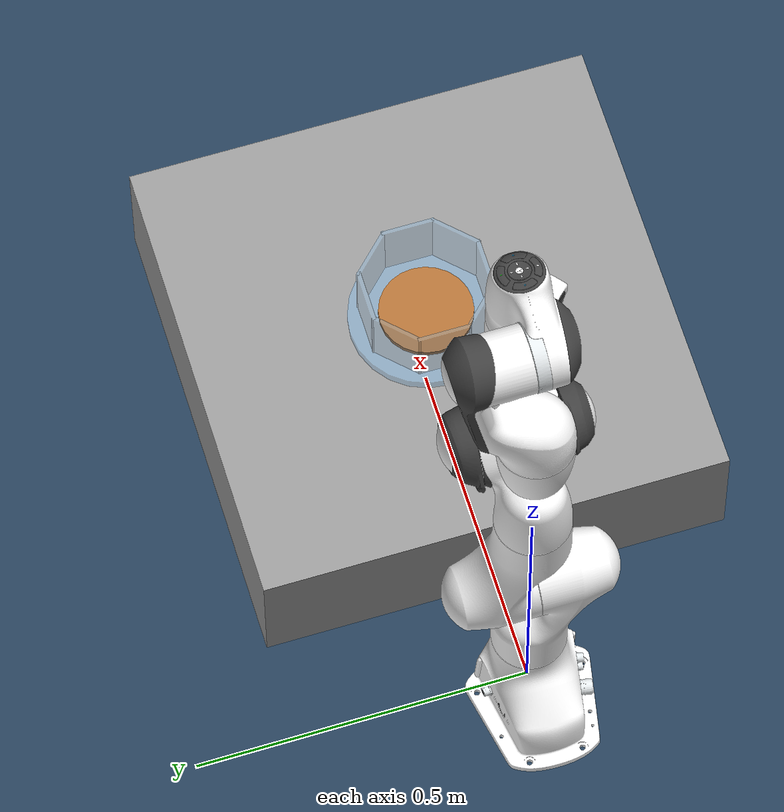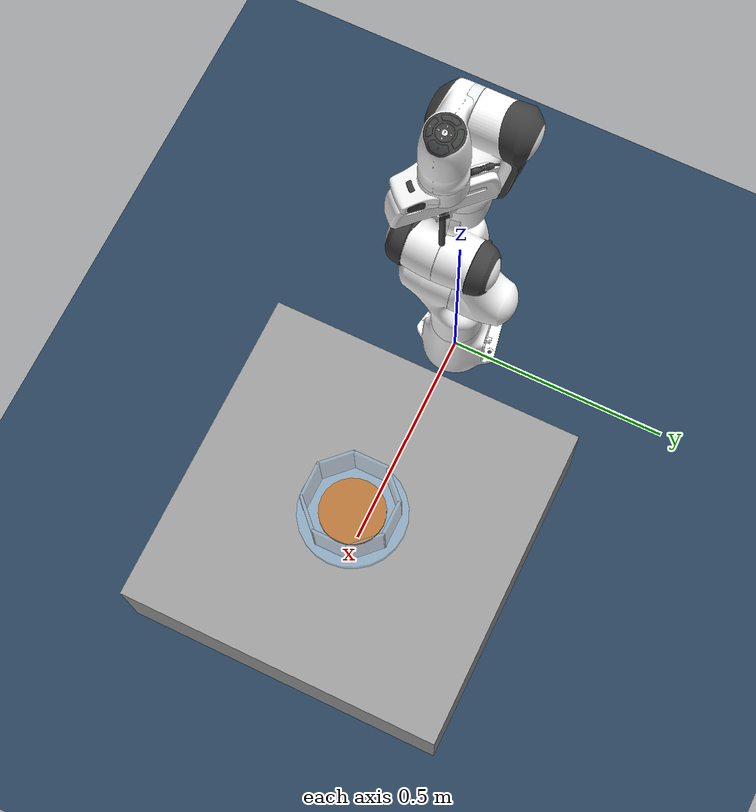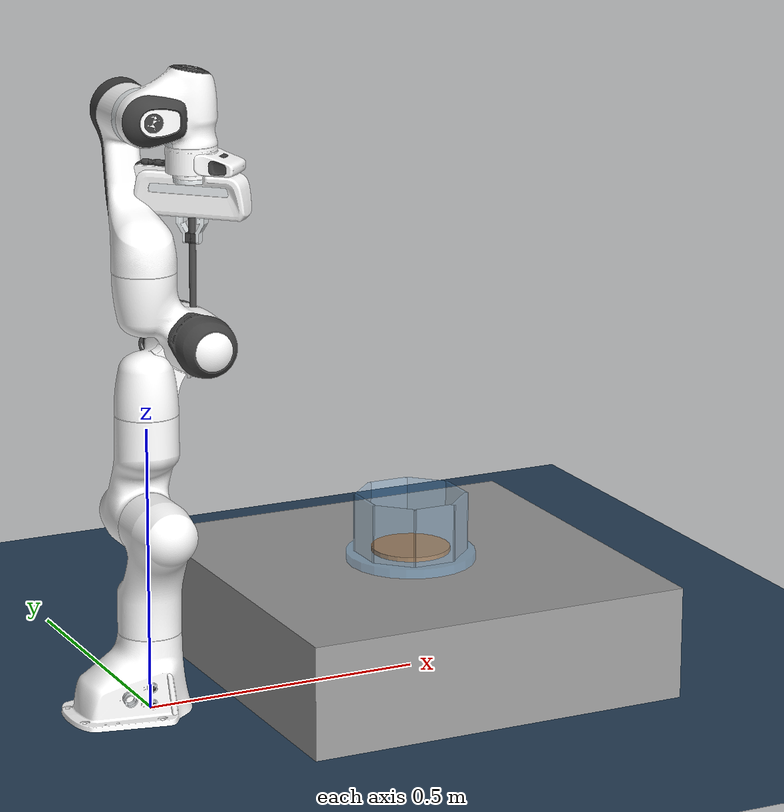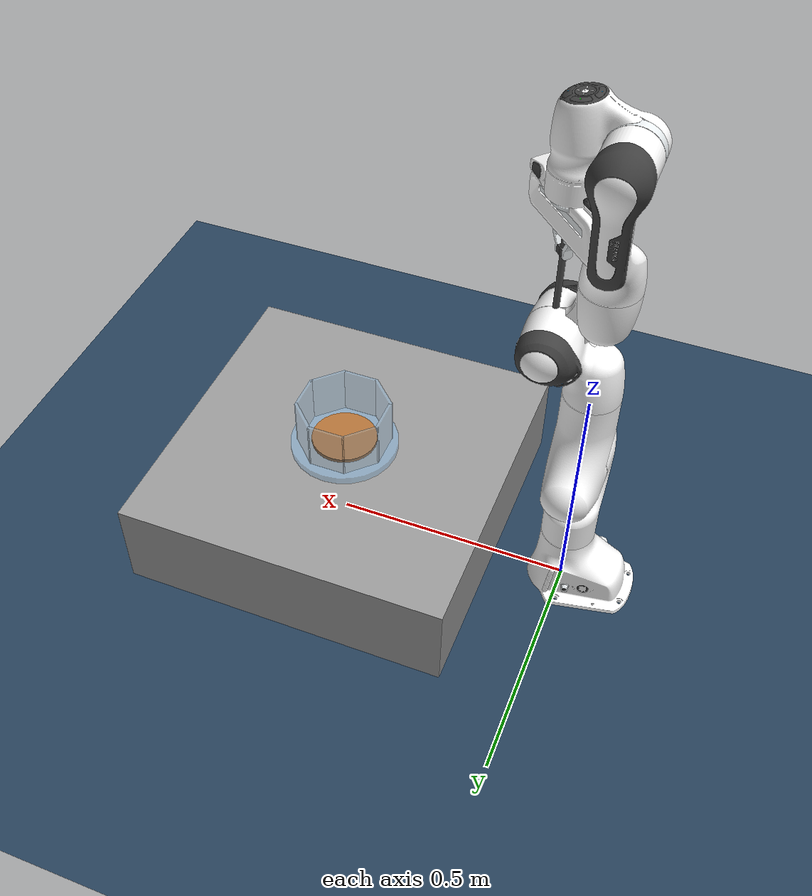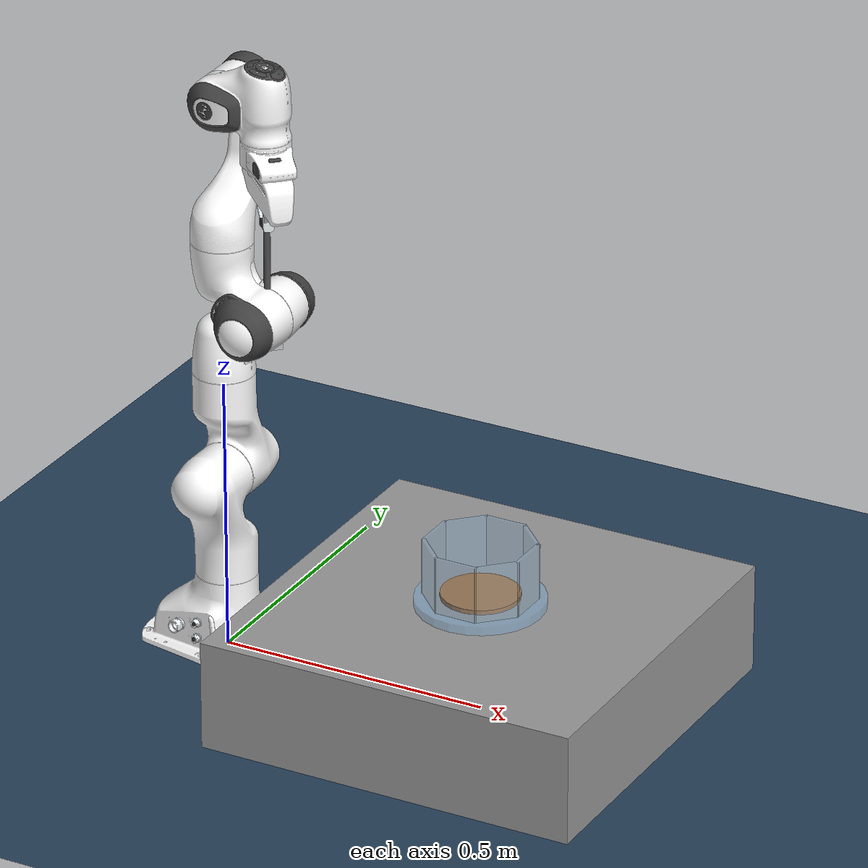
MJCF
<mujoco model="panda scene">
  <include file="panda.xml"/>
  <option gravity="0 0 0"/>

  <statistic center="0.3 0 0.4" extent="1"/>

  <visual>
    <headlight diffuse="0.6 0.6 0.6" ambient="0.3 0.3 0.3" specular="0 0 0"/>
    <rgba haze="0.15 0.25 0.35 1"/>
    <global azimuth="120" elevation="-20"/>
  </visual>

  <asset>
    <texture type="skybox" builtin="gradient" rgb1="0.3 0.5 0.7" rgb2="0 0 0" width="512" height="3072"/>
    <texture type="2d" name="groundplane" builtin="checker" mark="edge" rgb1="0.2 0.3 0.4" rgb2="0.1 0.2 0.3"
      markrgb="0.8 0.8 0.8" width="300" height="300"/>
    <material name="groundplane" texture="groundplane" texuniform="true" texrepeat="5 5" reflectance="0.2"/>
  </asset>

  <worldbody>
    <light pos="0 0 1.5" dir="0 0 -1" directional="true"/>
    <geom name="floor" size="0 0 0.05" type="plane" material="groundplane"/>
    <geom
      name="table"
      type="box"
      pos="0.5 0 0.1"
      size="0.35 0.35 0.1"
      rgba="0.6 0.6 0.6 1"/>

    <!-- Small beaker approximation.
         MuJoCo geoms are solid, so the beaker wall is built from
         several thin boxes instead of one hollow cylinder. -->
    <body name="beaker" pos="0.5 0 0.2">
      <!-- Wider bottom to reduce accidental penetration near the base. -->
      <geom
        name="beaker_base"
        type="cylinder"
        pos="0 0 0.008"
        size="0.115 0.008"
        rgba="0.45 0.75 1.0 0.35"/>

      <geom
        name="beaker_wall_0"
        type="box"
        pos="0.090 0 0.065"
        size="0.003 0.040 0.055"
        rgba="0.45 0.75 1.0 0.25"/>
      <geom
        name="beaker_wall_1"
        type="box"
        pos="0.0636 0.0636 0.065"
        quat="0.9238795 0 0 0.3826834"
        size="0.003 0.040 0.055"
        rgba="0.45 0.75 1.0 0.25"/>
      <geom
        name="beaker_wall_2"
        type="box"
        pos="0 0.090 0.065"
        quat="0.7071068 0 0 0.7071068"
        size="0.003 0.040 0.055"
        rgba="0.45 0.75 1.0 0.25"/>
      <geom
        name="beaker_wall_3"
        type="box"
        pos="-0.0636 0.0636 0.065"
        quat="0.3826834 0 0 0.9238795"
        size="0.003 0.040 0.055"
        rgba="0.45 0.75 1.0 0.25"/>
      <geom
        name="beaker_wall_4"
        type="box"
        pos="-0.090 0 0.065"
        size="0.003 0.040 0.055"
        rgba="0.45 0.75 1.0 0.25"/>
      <geom
        name="beaker_wall_5"
        type="box"
        pos="-0.0636 -0.0636 0.065"
        quat="0.9238795 0 0 0.3826834"
        size="0.003 0.040 0.055"
        rgba="0.45 0.75 1.0 0.25"/>
      <geom
        name="beaker_wall_6"
        type="box"
        pos="0 -0.090 0.065"
        quat="0.7071068 0 0 0.7071068"
        size="0.003 0.040 0.055"
        rgba="0.45 0.75 1.0 0.25"/>
      <geom
        name="beaker_wall_7"
        type="box"
        pos="0.0636 -0.0636 0.065"
        quat="0.3826834 0 0 0.9238795"
        size="0.003 0.040 0.055"
        rgba="0.45 0.75 1.0 0.25"/>
    </body>

    <!-- Tested material inside the beaker. Keep the name sample_geom:
         Python code uses it to compute the material surface height. -->
    <body name="sample" pos="0.5 0 0.220">
      <geom
        name="sample_geom"
        type="cylinder"
        size="0.070 0.004"
        solref="0.02 1"
        solimp="0.8 0.95 0.001"
        rgba="0.70 0.45 0.22 1"/>
    </body>
  </worldbody>
</mujoco>

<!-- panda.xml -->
<mujoco model="panda">
  <compiler angle="radian" meshdir="assets" autolimits="true"/>

  <option integrator="implicitfast"/>

  <default>
    <default class="panda">
      <material specular="0.5" shininess="0.25"/>
      <joint armature="0.1" damping="1" axis="0 0 1" range="-2.8973 2.8973"/>
      <general dyntype="none" biastype="affine" ctrlrange="-2.8973 2.8973" forcerange="-87 87"/>
      <default class="finger">
        <joint axis="0 1 0" type="slide" range="0 0.04"/>
      </default>

      <default class="visual">
        <geom type="mesh" contype="0" conaffinity="0" group="2"/>
      </default>
      <default class="collision">
        <geom type="mesh" group="3"/>
        <default class="fingertip_pad_collision_1">
          <geom type="box" size="0.0085 0.004 0.0085" pos="0 0.0055 0.0445"/>
        </default>
        <default class="fingertip_pad_collision_2">
          <geom type="box" size="0.003 0.002 0.003" pos="0.0055 0.002 0.05"/>
        </default>
        <default class="fingertip_pad_collision_3">
          <geom type="box" size="0.003 0.002 0.003" pos="-0.0055 0.002 0.05"/>
        </default>
        <default class="fingertip_pad_collision_4">
          <geom type="box" size="0.003 0.002 0.0035" pos="0.0055 0.002 0.0395"/>
        </default>
        <default class="fingertip_pad_collision_5">
          <geom type="box" size="0.003 0.002 0.0035" pos="-0.0055 0.002 0.0395"/>
        </default>
      </default>
    </default>
  </default>

  <asset>
    <material class="panda" name="white" rgba="1 1 1 1"/>
    <material class="panda" name="off_white" rgba="0.901961 0.921569 0.929412 1"/>
    <material class="panda" name="black" rgba="0.25 0.25 0.25 1"/>
    <material class="panda" name="green" rgba="0 1 0 1"/>
    <material class="panda" name="light_blue" rgba="0.039216 0.541176 0.780392 1"/>

    <!-- Collision meshes -->
    <mesh name="link0_c" file="link0.stl"/>
    <mesh name="link1_c" file="link1.stl"/>
    <mesh name="link2_c" file="link2.stl"/>
    <mesh name="link3_c" file="link3.stl"/>
    <mesh name="link4_c" file="link4.stl"/>
    <mesh name="link5_c0" file="link5_collision_0.obj"/>
    <mesh name="link5_c1" file="link5_collision_1.obj"/>
    <mesh name="link5_c2" file="link5_collision_2.obj"/>
    <mesh name="link6_c" file="link6.stl"/>
    <mesh name="link7_c" file="link7.stl"/>
    <mesh name="hand_c" file="hand.stl"/>

    <!-- Visual meshes -->
    <mesh file="link0_0.obj"/>
    <mesh file="link0_1.obj"/>
    <mesh file="link0_2.obj"/>
    <mesh file="link0_3.obj"/>
    <mesh file="link0_4.obj"/>
    <mesh file="link0_5.obj"/>
    <mesh file="link0_7.obj"/>
    <mesh file="link0_8.obj"/>
    <mesh file="link0_9.obj"/>
    <mesh file="link0_10.obj"/>
    <mesh file="link0_11.obj"/>
    <mesh file="link1.obj"/>
    <mesh file="link2.obj"/>
    <mesh file="link3_0.obj"/>
    <mesh file="link3_1.obj"/>
    <mesh file="link3_2.obj"/>
    <mesh file="link3_3.obj"/>
    <mesh file="link4_0.obj"/>
    <mesh file="link4_1.obj"/>
    <mesh file="link4_2.obj"/>
    <mesh file="link4_3.obj"/>
    <mesh file="link5_0.obj"/>
    <mesh file="link5_1.obj"/>
    <mesh file="link5_2.obj"/>
    <mesh file="link6_0.obj"/>
    <mesh file="link6_1.obj"/>
    <mesh file="link6_2.obj"/>
    <mesh file="link6_3.obj"/>
    <mesh file="link6_4.obj"/>
    <mesh file="link6_5.obj"/>
    <mesh file="link6_6.obj"/>
    <mesh file="link6_7.obj"/>
    <mesh file="link6_8.obj"/>
    <mesh file="link6_9.obj"/>
    <mesh file="link6_10.obj"/>
    <mesh file="link6_11.obj"/>
    <mesh file="link6_12.obj"/>
    <mesh file="link6_13.obj"/>
    <mesh file="link6_14.obj"/>
    <mesh file="link6_15.obj"/>
    <mesh file="link6_16.obj"/>
    <mesh file="link7_0.obj"/>
    <mesh file="link7_1.obj"/>
    <mesh file="link7_2.obj"/>
    <mesh file="link7_3.obj"/>
    <mesh file="link7_4.obj"/>
    <mesh file="link7_5.obj"/>
    <mesh file="link7_6.obj"/>
    <mesh file="link7_7.obj"/>
    <mesh file="hand_0.obj"/>
    <mesh file="hand_1.obj"/>
    <mesh file="hand_2.obj"/>
    <mesh file="hand_3.obj"/>
    <mesh file="hand_4.obj"/>
    <mesh file="finger_0.obj"/>
    <mesh file="finger_1.obj"/>
  </asset>

  <worldbody>
    <light name="top" pos="0 0 2" mode="trackcom"/>
    <body name="link0" childclass="panda">
      <inertial mass="0.629769" pos="-0.041018 -0.00014 0.049974"
        fullinertia="0.00315 0.00388 0.004285 8.2904e-7 0.00015 8.2299e-6"/>
      <geom mesh="link0_0" material="off_white" class="visual"/>
      <geom mesh="link0_1" material="black" class="visual"/>
      <geom mesh="link0_2" material="off_white" class="visual"/>
      <geom mesh="link0_3" material="black" class="visual"/>
      <geom mesh="link0_4" material="off_white" class="visual"/>
      <geom mesh="link0_5" material="black" class="visual"/>
      <geom mesh="link0_7" material="white" class="visual"/>
      <geom mesh="link0_8" material="white" class="visual"/>
      <geom mesh="link0_9" material="black" class="visual"/>
      <geom mesh="link0_10" material="off_white" class="visual"/>
      <geom mesh="link0_11" material="white" class="visual"/>
      <geom mesh="link0_c" class="collision"/>
      <body name="link1" pos="0 0 0.333">
        <inertial mass="4.970684" pos="0.003875 0.002081 -0.04762"
          fullinertia="0.70337 0.70661 0.0091170 -0.00013900 0.0067720 0.019169"/>
        <joint name="joint1"/>
        <geom material="white" mesh="link1" class="visual"/>
        <geom mesh="link1_c" class="collision"/>
        <body name="link2" quat="1 -1 0 0">
          <inertial mass="0.646926" pos="-0.003141 -0.02872 0.003495"
            fullinertia="0.0079620 2.8110e-2 2.5995e-2 -3.925e-3 1.0254e-2 7.04e-4"/>
          <joint name="joint2" range="-1.7628 1.7628"/>
          <geom material="white" mesh="link2" class="visual"/>
          <geom mesh="link2_c" class="collision"/>
          <body name="link3" pos="0 -0.316 0" quat="1 1 0 0">
            <joint name="joint3"/>
            <inertial mass="3.228604" pos="2.7518e-2 3.9252e-2 -6.6502e-2"
              fullinertia="3.7242e-2 3.6155e-2 1.083e-2 -4.761e-3 -1.1396e-2 -1.2805e-2"/>
            <geom mesh="link3_0" material="white" class="visual"/>
            <geom mesh="link3_1" material="white" class="visual"/>
            <geom mesh="link3_2" material="white" class="visual"/>
            <geom mesh="link3_3" material="black" class="visual"/>
            <geom mesh="link3_c" class="collision"/>
            <body name="link4" pos="0.0825 0 0" quat="1 1 0 0">
              <inertial mass="3.587895" pos="-5.317e-2 1.04419e-1 2.7454e-2"
                fullinertia="2.5853e-2 1.9552e-2 2.8323e-2 7.796e-3 -1.332e-3 8.641e-3"/>
              <joint name="joint4" range="-3.0718 -0.0698"/>
              <geom mesh="link4_0" material="white" class="visual"/>
              <geom mesh="link4_1" material="white" class="visual"/>
              <geom mesh="link4_2" material="black" class="visual"/>
              <geom mesh="link4_3" material="white" class="visual"/>
              <geom mesh="link4_c" class="collision"/>
              <body name="link5" pos="-0.0825 0.384 0" quat="1 -1 0 0">
                <inertial mass="1.225946" pos="-1.1953e-2 4.1065e-2 -3.8437e-2"
                  fullinertia="3.5549e-2 2.9474e-2 8.627e-3 -2.117e-3 -4.037e-3 2.29e-4"/>
                <joint name="joint5"/>
                <geom mesh="link5_0" material="black" class="visual"/>
                <geom mesh="link5_1" material="white" class="visual"/>
                <geom mesh="link5_2" material="white" class="visual"/>
                <geom mesh="link5_c0" class="collision"/>
                <geom mesh="link5_c1" class="collision"/>
                <geom mesh="link5_c2" class="collision"/>
                <body name="link6" quat="1 1 0 0">
                  <inertial mass="1.666555" pos="6.0149e-2 -1.4117e-2 -1.0517e-2"
                    fullinertia="1.964e-3 4.354e-3 5.433e-3 1.09e-4 -1.158e-3 3.41e-4"/>
                  <joint name="joint6" range="-0.0175 3.7525"/>
                  <geom mesh="link6_0" material="off_white" class="visual"/>
                  <geom mesh="link6_1" material="white" class="visual"/>
                  <geom mesh="link6_2" material="black" class="visual"/>
                  <geom mesh="link6_3" material="white" class="visual"/>
                  <geom mesh="link6_4" material="white" class="visual"/>
                  <geom mesh="link6_5" material="white" class="visual"/>
                  <geom mesh="link6_6" material="white" class="visual"/>
                  <geom mesh="link6_7" material="light_blue" class="visual"/>
                  <geom mesh="link6_8" material="light_blue" class="visual"/>
                  <geom mesh="link6_9" material="black" class="visual"/>
                  <geom mesh="link6_10" material="black" class="visual"/>
                  <geom mesh="link6_11" material="white" class="visual"/>
                  <geom mesh="link6_12" material="green" class="visual"/>
                  <geom mesh="link6_13" material="white" class="visual"/>
                  <geom mesh="link6_14" material="black" class="visual"/>
                  <geom mesh="link6_15" material="black" class="visual"/>
                  <geom mesh="link6_16" material="white" class="visual"/>
                  <geom mesh="link6_c" class="collision"/>
                  <body name="link7" pos="0.088 0 0" quat="1 1 0 0">
                    <inertial mass="7.35522e-01" pos="1.0517e-2 -4.252e-3 6.1597e-2"
                      fullinertia="1.2516e-2 1.0027e-2 4.815e-3 -4.28e-4 -1.196e-3 -7.41e-4"/>
                    <joint name="joint7"/>
                    <geom mesh="link7_0" material="white" class="visual"/>
                    <geom mesh="link7_1" material="black" class="visual"/>
                    <geom mesh="link7_2" material="black" class="visual"/>
                    <geom mesh="link7_3" material="black" class="visual"/>
                    <geom mesh="link7_4" material="black" class="visual"/>
                    <geom mesh="link7_5" material="black" class="visual"/>
                    <geom mesh="link7_6" material="black" class="visual"/>
                    <geom mesh="link7_7" material="white" class="visual"/>
                    <geom mesh="link7_c" class="collision"/>
                    <body name="hand" pos="0 0 0.107" quat="0.9238795 0 0 -0.3826834">
                      <inertial mass="0.73" pos="-0.01 0 0.03" diaginertia="0.001 0.0025 0.0017"/>
                      <geom mesh="hand_0" material="off_white" class="visual"/>
                      <geom mesh="hand_1" material="black" class="visual"/>
                      <geom mesh="hand_2" material="black" class="visual"/>
                      <geom mesh="hand_3" material="white" class="visual"/>
                      <geom mesh="hand_4" material="off_white" class="visual"/>
                      <geom mesh="hand_c" class="collision"/>
					  <body name="spatula" pos="0 0 0.16">
						  <geom
							  name="spatula_handle"
							  type="cylinder"
							  size="0.006 0.10"
							  rgba="0.3 0.3 0.3 1"/>
						  <geom
							  name="spatula_blade"
							  type="box"
							  pos="0 0 0.14"
							  size="0.025 0.003 0.04"
							  rgba="0.75 0.75 0.75 1"/>
						  <site
							  name="spatula_tip"
							  pos="0 0 0.18"
							  size="0.002"
							  rgba="1 0 0 1"/>
					  </body>
                      <body name="left_finger" pos="0 0 0.0584">
                        <inertial mass="0.015" pos="0 0 0" diaginertia="2.375e-6 2.375e-6 7.5e-7"/>
                        <joint name="finger_joint1" class="finger"/>
                        <geom mesh="finger_0" material="off_white" class="visual"/>
                        <geom mesh="finger_1" material="black" class="visual"/>
                        <geom mesh="finger_0" class="collision"/>
                        <geom class="fingertip_pad_collision_1"/>
                        <geom class="fingertip_pad_collision_2"/>
                        <geom class="fingertip_pad_collision_3"/>
                        <geom class="fingertip_pad_collision_4"/>
                        <geom class="fingertip_pad_collision_5"/>
                      </body>
                      <body name="right_finger" pos="0 0 0.0584" quat="0 0 0 1">
                        <inertial mass="0.015" pos="0 0 0" diaginertia="2.375e-6 2.375e-6 7.5e-7"/>
                        <joint name="finger_joint2" class="finger"/>
                        <geom mesh="finger_0" material="off_white" class="visual"/>
                        <geom mesh="finger_1" material="black" class="visual"/>
                        <geom mesh="finger_0" class="collision"/>
                        <geom class="fingertip_pad_collision_1"/>
                        <geom class="fingertip_pad_collision_2"/>
                        <geom class="fingertip_pad_collision_3"/>
                        <geom class="fingertip_pad_collision_4"/>
                        <geom class="fingertip_pad_collision_5"/>
                      </body>
                    </body>
                  </body>
                </body>
              </body>
            </body>
          </body>
        </body>
      </body>
    </body>
  </worldbody>

  <tendon>
    <fixed name="split">
      <joint joint="finger_joint1" coef="0.5"/>
      <joint joint="finger_joint2" coef="0.5"/>
    </fixed>
  </tendon>

  <equality>
    <joint joint1="finger_joint1" joint2="finger_joint2" solimp="0.95 0.99 0.001" solref="0.005 1"/>
  </equality>

  <actuator>
    <general class="panda" name="actuator1" joint="joint1" gainprm="4500" biasprm="0 -4500 -450"/>
    <general class="panda" name="actuator2" joint="joint2" gainprm="4500" biasprm="0 -4500 -450"
      ctrlrange="-1.7628 1.7628"/>
    <general class="panda" name="actuator3" joint="joint3" gainprm="3500" biasprm="0 -3500 -350"/>
    <general class="panda" name="actuator4" joint="joint4" gainprm="3500" biasprm="0 -3500 -350"
      ctrlrange="-3.0718 -0.0698"/>
    <general class="panda" name="actuator5" joint="joint5" gainprm="2000" biasprm="0 -2000 -200" forcerange="-12 12"/>
    <general class="panda" name="actuator6" joint="joint6" gainprm="2000" biasprm="0 -2000 -200" forcerange="-12 12"
      ctrlrange="-0.0175 3.7525"/>
    <general class="panda" name="actuator7" joint="joint7" gainprm="2000" biasprm="0 -2000 -200" forcerange="-12 12"/>
    <!-- Remap original ctrlrange (0, 0.04) to (0, 255): 0.04 * 100 / 255 = 0.01568627451 -->
    <general class="panda" name="actuator8" tendon="split" forcerange="-100 100" ctrlrange="0 255"
      gainprm="0.01568627451 0 0" biasprm="0 -100 -10"/>
  </actuator>

  <keyframe>
    <key name="home" qpos="0 0 0 -1.57079 0 1.57079 -0.7853 0.04 0.04" ctrl="0 0 0 -1.57079 0 1.57079 -0.7853 255"/>
  </keyframe>

  <contact>
    <exclude body1="link0" body2="link1"/>
  </contact>
</mujoco>
